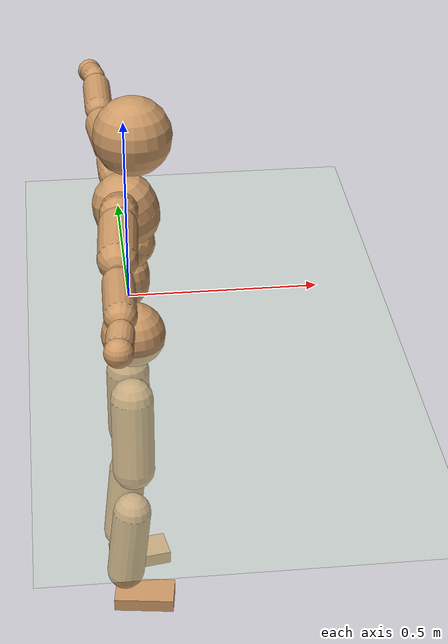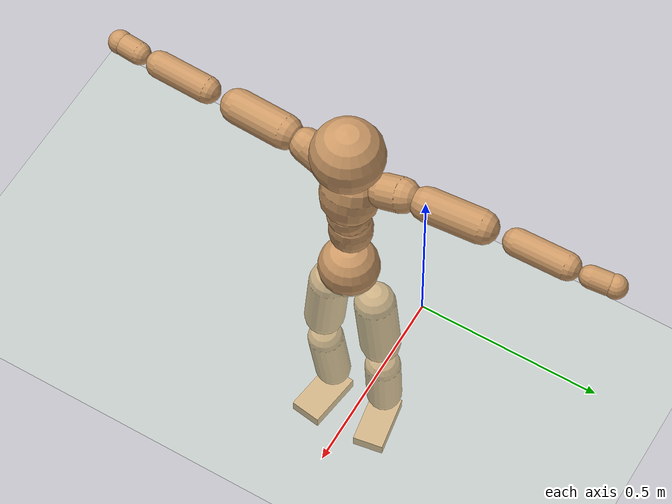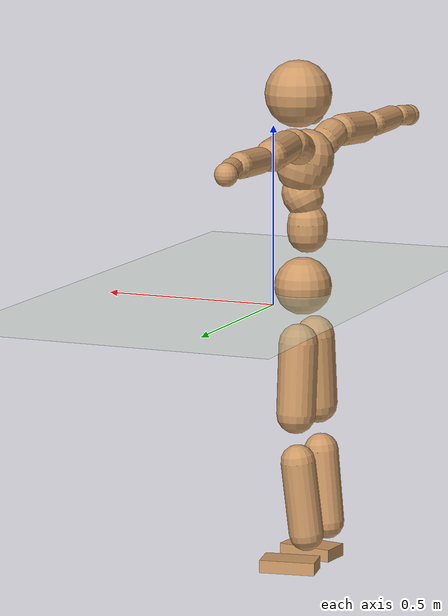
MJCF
<mujoco model="humanoid">
  <compiler coordinate="local"/>
  <default>
    <joint damping="0.0" armature="0.01" stiffness="0.0" limited="true"/>
    <geom conaffinity="1" condim="3" contype="7" margin="0.001" rgba="0.8 0.6 .4 1"/>
  </default>
  <asset>
    <texture type="skybox" builtin="gradient" rgb1=".4 .5 .6" rgb2="0 0 0" width="100" height="100"/>
    <texture builtin="flat" height="1278" mark="cross" markrgb="1 1 1" name="texgeom" random="0.01" rgb1="0.8 0.6 0.4" rgb2="0.8 0.6 0.4" type="cube" width="127"/>
    <texture builtin="checker" height="100" name="texplane" rgb1="0 0 0" rgb2="0.8 0.8 0.8" type="2d" width="100"/>
    <material name="MatPlane" reflectance="0.5" shininess="1" specular="1" texrepeat="60 60" texture="texplane"/>
    <material name="geom" texture="texgeom" texuniform="true"/>
  </asset>
  <worldbody>
    <light cutoff="100" diffuse="1 1 1" dir="-0 0 -1.3" directional="true" exponent="1" pos="0 0 1.3" specular=".1 .1 .1"/>
    <geom conaffinity="1" condim="3" name="floor" pos="0 0 0" rgba="0.8 0.9 0.8 1" size="100 100 .2" type="plane" material="MatPlane"/>
    <body name="Pelvis" pos="-0.0019 -0.2182 0.0178">
      <freejoint name="Pelvis"/>
      <geom type="sphere" contype="1" conaffinity="1" density="500" size="0.0823" pos="0.0000 0.0000 0.0000" name="Pelvis"/>
      <body name="L_Hip" pos="-0.0142 0.0634 -0.0857">
        <joint name="L_Hip_x" type="hinge" pos="0 0 0" axis="1 0 0" stiffness="800" damping="80" armature="0.02" range="-180.0000 180.0000"/>
        <joint name="L_Hip_y" type="hinge" pos="0 0 0" axis="0 1 0" stiffness="800" damping="80" armature="0.02" range="-180.0000 180.0000"/>
        <joint name="L_Hip_z" type="hinge" pos="0 0 0" axis="0 0 1" stiffness="800" damping="80" armature="0.02" range="-180.0000 180.0000"/>
        <geom type="capsule" contype="1" conaffinity="1" density="500" fromto="-0.0001 0.0059 -0.0673 -0.0003 0.0237 -0.2693" size="0.056" name="L_Hip"/>
        <body name="L_Knee" pos="-0.0004 0.0297 -0.3366">
          <joint name="L_Knee_x" type="hinge" pos="0 0 0" axis="1 0 0" stiffness="800" damping="80" armature="0.02" range="-180.0000 180.0000"/>
          <joint name="L_Knee_y" type="hinge" pos="0 0 0" axis="0 1 0" stiffness="800" damping="80" armature="0.02" range="-180.0000 180.0000"/>
          <joint name="L_Knee_z" type="hinge" pos="0 0 0" axis="0 0 1" stiffness="800" damping="80" armature="0.02" range="-180.0000 180.0000"/>
          <geom type="capsule" contype="1" conaffinity="1" density="500" fromto="-0.0077 -0.0025 -0.0699 -0.0308 -0.0098 -0.2796" size="0.0499" name="L_Knee"/>
          <body name="L_Ankle" pos="-0.0385 -0.0123 -0.3495">
            <joint name="L_Ankle_x" type="hinge" pos="0 0 0" axis="1 0 0" stiffness="800" damping="80" armature="0.02" range="-180.0000 180.0000"/>
            <joint name="L_Ankle_y" type="hinge" pos="0 0 0" axis="0 1 0" stiffness="800" damping="80" armature="0.02" range="-180.0000 180.0000"/>
            <joint name="L_Ankle_z" type="hinge" pos="0 0 0" axis="0 0 1" stiffness="800" damping="80" armature="0.02" range="-180.0000 180.0000"/>
            <geom type="box" contype="1" conaffinity="1" density="500" pos="0.0555 0.0092 -0.0249" size="0.0798 0.0432 0.0185" quat="0.9966 0.0000 0.0000 0.0819" name="L_Ankle"/>
            <body name="L_Toe" pos="0.111 0.0184 -0.0498">
              <joint name="L_Toe_x" type="hinge" pos="0 0 0" axis="1 0 0" stiffness="500" damping="50" armature="0.02" range="-180.0000 180.0000"/>
              <joint name="L_Toe_y" type="hinge" pos="0 0 0" axis="0 1 0" stiffness="500" damping="50" armature="0.02" range="-180.0000 180.0000"/>
              <joint name="L_Toe_z" type="hinge" pos="0 0 0" axis="0 0 1" stiffness="500" damping="50" armature="0.02" range="-180.0000 180.0000"/>
              <geom type="box" contype="1" conaffinity="1" density="500" pos="0.0000 0.0000 0.0247" size="0.0009 0.0022 0.0009" quat="0.9960 0.0000 0.0000 0.0890" name="L_Toe"/>
            </body>
          </body>
        </body>
      </body>
      <body name="R_Hip" pos="-0.0112 -0.0608 -0.0844">
        <joint name="R_Hip_x" type="hinge" pos="0 0 0" axis="1 0 0" stiffness="800" damping="80" armature="0.02" range="-180.0000 180.0000"/>
        <joint name="R_Hip_y" type="hinge" pos="0 0 0" axis="0 1 0" stiffness="800" damping="80" armature="0.02" range="-180.0000 180.0000"/>
        <joint name="R_Hip_z" type="hinge" pos="0 0 0" axis="0 0 1" stiffness="800" damping="80" armature="0.02" range="-180.0000 180.0000"/>
        <geom type="capsule" contype="1" conaffinity="1" density="500" fromto="-0.0007 -0.0067 -0.0688 -0.0030 -0.0266 -0.2750" size="0.0554" name="R_Hip"/>
        <body name="R_Knee" pos="-0.0037 -0.0333 -0.3438">
          <joint name="R_Knee_x" type="hinge" pos="0 0 0" axis="1 0 0" stiffness="800" damping="80" armature="0.02" range="-180.0000 180.0000"/>
          <joint name="R_Knee_y" type="hinge" pos="0 0 0" axis="0 1 0" stiffness="800" damping="80" armature="0.02" range="-180.0000 180.0000"/>
          <joint name="R_Knee_z" type="hinge" pos="0 0 0" axis="0 0 1" stiffness="800" damping="80" armature="0.02" range="-180.0000 180.0000"/>
          <geom type="capsule" contype="1" conaffinity="1" density="500" fromto="-0.0074 0.0029 -0.0697 -0.0296 0.0115 -0.2787" size="0.0503" name="R_Knee"/>
          <body name="R_Ankle" pos="-0.037 0.0144 -0.3484">
            <joint name="R_Ankle_x" type="hinge" pos="0 0 0" axis="1 0 0" stiffness="800" damping="80" armature="0.02" range="-180.0000 180.0000"/>
            <joint name="R_Ankle_y" type="hinge" pos="0 0 0" axis="0 1 0" stiffness="800" damping="80" armature="0.02" range="-180.0000 180.0000"/>
            <joint name="R_Ankle_z" type="hinge" pos="0 0 0" axis="0 0 1" stiffness="800" damping="80" armature="0.02" range="-180.0000 180.0000"/>
            <geom type="box" contype="1" conaffinity="1" density="500" pos="0.0570 -0.0081 -0.0209" size="0.0805 0.0446 0.0181" quat="0.9975 0.0000 0.0000 -0.0709" name="R_Ankle"/>
            <body name="R_Toe" pos="0.114 -0.0163 -0.0418">
              <joint name="R_Toe_x" type="hinge" pos="0 0 0" axis="1 0 0" stiffness="500" damping="50" armature="0.02" range="-180.0000 180.0000"/>
              <joint name="R_Toe_y" type="hinge" pos="0 0 0" axis="0 1 0" stiffness="500" damping="50" armature="0.02" range="-180.0000 180.0000"/>
              <joint name="R_Toe_z" type="hinge" pos="0 0 0" axis="0 0 1" stiffness="500" damping="50" armature="0.02" range="-180.0000 180.0000"/>
              <geom type="box" contype="1" conaffinity="1" density="500" pos="0.0000 0.0000 0.0232" size="0.0008 0.0022 0.001" quat="0.9981 0.0000 0.0000 -0.0612" name="R_Toe"/>
            </body>
          </body>
        </body>
      </body>
      <body name="Torso" pos="-0.0134 -0.0028 0.0988">
        <joint name="Torso_x" type="hinge" pos="0 0 0" axis="1 0 0" stiffness="1000" damping="100" armature="0.02" range="-180.0000 180.0000"/>
        <joint name="Torso_y" type="hinge" pos="0 0 0" axis="0 1 0" stiffness="1000" damping="100" armature="0.02" range="-180.0000 180.0000"/>
        <joint name="Torso_z" type="hinge" pos="0 0 0" axis="0 0 1" stiffness="1000" damping="100" armature="0.02" range="-180.0000 180.0000"/>
        <geom type="capsule" contype="1" conaffinity="1" density="500" fromto="0.0009 0.0026 0.0826 0.0006 0.0017 0.0551" size="0.05766" name="Torso"/>
        <body name="Spine" pos="0.0015 0.0044 0.1377">
          <joint name="Spine_x" type="hinge" pos="0 0 0" axis="1 0 0" stiffness="1000" damping="100" armature="0.02" range="-180.0000 180.0000"/>
          <joint name="Spine_y" type="hinge" pos="0 0 0" axis="0 1 0" stiffness="1000" damping="100" armature="0.02" range="-180.0000 180.0000"/>
          <joint name="Spine_z" type="hinge" pos="0 0 0" axis="0 0 1" stiffness="1000" damping="100" armature="0.02" range="-180.0000 180.0000"/>
          <geom type="capsule" contype="1" conaffinity="1" density="500" fromto="0.0151 0.0015 0.0296 0.0100 0.0010 0.0197" size="0.058311" name="Spine"/>
          <body name="Chest" pos="0.0251 0.0025 0.0493">
            <joint name="Chest_x" type="hinge" pos="0 0 0" axis="1 0 0" stiffness="1000" damping="100" armature="0.02" range="-180.0000 180.0000"/>
            <joint name="Chest_y" type="hinge" pos="0 0 0" axis="0 1 0" stiffness="1000" damping="100" armature="0.02" range="-180.0000 180.0000"/>
            <joint name="Chest_z" type="hinge" pos="0 0 0" axis="0 0 1" stiffness="1000" damping="100" armature="0.02" range="-180.0000 180.0000"/>
            <geom type="capsule" contype="1" conaffinity="1" density="500" fromto="-0.0244 -0.0008 0.0845 -0.0163 -0.0005 0.0564" size="0.078864" name="Chest"/>
            <body name="Neck" pos="-0.0484 -0.002 0.2002">
              <joint name="Neck_x" type="hinge" pos="0 0 0" axis="1 0 0" stiffness="500" damping="50" armature="0.02" range="-180.0000 180.0000"/>
              <joint name="Neck_y" type="hinge" pos="0 0 0" axis="0 1 0" stiffness="500" damping="50" armature="0.02" range="-180.0000 180.0000"/>
              <joint name="Neck_z" type="hinge" pos="0 0 0" axis="0 0 1" stiffness="500" damping="50" armature="0.02" range="-180.0000 180.0000"/>
              <geom type="capsule" contype="1" conaffinity="1" density="500" fromto="0.0096 0.0010 0.0124 0.0385 0.0041 0.0498" size="0.036084" name="Neck"/>
              <body name="Head" pos="0.0481 0.0052 0.0622">
                <joint name="Head_x" type="hinge" pos="0 0 0" axis="1 0 0" stiffness="500" damping="50" armature="0.02" range="-180.0000 180.0000"/>
                <joint name="Head_y" type="hinge" pos="0 0 0" axis="0 1 0" stiffness="500" damping="50" armature="0.02" range="-180.0000 180.0000"/>
                <joint name="Head_z" type="hinge" pos="0 0 0" axis="0 0 1" stiffness="500" damping="50" armature="0.02" range="-180.0000 180.0000"/>
                <geom type="sphere" contype="1" conaffinity="1" density="500" size="0.0952" pos="0.0000 0.0000 0.0000" name="Head"/>
              </body>
            </body>
            <body name="L_Thorax" pos="-0.0345 0.0692 0.1126">
              <joint name="L_Thorax_x" type="hinge" pos="0 0 0" axis="1 0 0" stiffness="500" damping="50" armature="0.02" range="-180.0000 180.0000"/>
              <joint name="L_Thorax_y" type="hinge" pos="0 0 0" axis="0 1 0" stiffness="500" damping="50" armature="0.02" range="-180.0000 180.0000"/>
              <joint name="L_Thorax_z" type="hinge" pos="0 0 0" axis="0 0 1" stiffness="500" damping="50" armature="0.02" range="-180.0000 180.0000"/>
              <geom type="capsule" contype="1" conaffinity="1" density="500" fromto="-0.0008 0.0167 0.0058 -0.0031 0.0667 0.0234" size="0.0458" name="L_Thorax"/>
              <body name="L_Shoulder" pos="-0.0039 0.0834 0.0292">
                <joint name="L_Shoulder_x" type="hinge" pos="0 0 0" axis="1 0 0" stiffness="500" damping="50" armature="0.02" range="-720.0000 720.0000"/>
                <joint name="L_Shoulder_y" type="hinge" pos="0 0 0" axis="0 1 0" stiffness="500" damping="50" armature="0.02" range="-720.0000 720.0000"/>
                <joint name="L_Shoulder_z" type="hinge" pos="0 0 0" axis="0 0 1" stiffness="500" damping="50" armature="0.02" range="-720.0000 720.0000"/>
                <geom type="capsule" contype="1" conaffinity="1" density="500" fromto="-0.0049 0.0479 -0.0022 -0.0196 0.1917 -0.0089" size="0.0446" name="L_Shoulder"/>
                <body name="L_Elbow" pos="-0.0245 0.2396 -0.0111">
                  <joint name="L_Elbow_x" type="hinge" pos="0 0 0" axis="1 0 0" stiffness="500" damping="50" armature="0.02" range="-720.0000 720.0000"/>
                  <joint name="L_Elbow_y" type="hinge" pos="0 0 0" axis="0 1 0" stiffness="500" damping="50" armature="0.02" range="-720.0000 720.0000"/>
                  <joint name="L_Elbow_z" type="hinge" pos="0 0 0" axis="0 0 1" stiffness="500" damping="50" armature="0.02" range="-720.0000 720.0000"/>
                  <geom type="capsule" contype="1" conaffinity="1" density="500" fromto="-0.0001 0.0457 0.0013 -0.0004 0.1827 0.0052" size="0.0361" name="L_Elbow"/>
                  <body name="L_Wrist" pos="-0.0005 0.2284 0.0066">
                    <joint name="L_Wrist_x" type="hinge" pos="0 0 0" axis="1 0 0" stiffness="300" damping="30" armature="0.02" range="-180.0000 180.0000"/>
                    <joint name="L_Wrist_y" type="hinge" pos="0 0 0" axis="0 1 0" stiffness="300" damping="30" armature="0.02" range="-180.0000 180.0000"/>
                    <joint name="L_Wrist_z" type="hinge" pos="0 0 0" axis="0 0 1" stiffness="300" damping="30" armature="0.02" range="-180.0000 180.0000"/>
                    <geom type="capsule" contype="1" conaffinity="1" density="500" fromto="-0.0026 0.0156 -0.0019 -0.0103 0.0625 -0.0076" size="0.0293" name="L_Wrist"/>
                    <body name="L_Hand" pos="-0.0129 0.0781 -0.0095">
                      <joint name="L_Hand_x" type="hinge" pos="0 0 0" axis="1 0 0" stiffness="300" damping="30" armature="0.02" range="-180.0000 180.0000"/>
                      <joint name="L_Hand_y" type="hinge" pos="0 0 0" axis="0 1 0" stiffness="300" damping="30" armature="0.02" range="-180.0000 180.0000"/>
                      <joint name="L_Hand_z" type="hinge" pos="0 0 0" axis="0 0 1" stiffness="300" damping="30" armature="0.02" range="-180.0000 180.0000"/>
                      <geom type="sphere" contype="1" conaffinity="1" density="500" size="0.0315" pos="0.0000 0.0000 0.0000" name="L_Hand"/>
                    </body>
                  </body>
                </body>
              </body>
            </body>
            <body name="R_Thorax" pos="-0.0392 -0.071 0.1099">
              <joint name="R_Thorax_x" type="hinge" pos="0 0 0" axis="1 0 0" stiffness="500" damping="50" armature="0.02" range="-180.0000 180.0000"/>
              <joint name="R_Thorax_y" type="hinge" pos="0 0 0" axis="0 1 0" stiffness="500" damping="50" armature="0.02" range="-180.0000 180.0000"/>
              <joint name="R_Thorax_z" type="hinge" pos="0 0 0" axis="0 0 1" stiffness="500" damping="50" armature="0.02" range="-180.0000 180.0000"/>
              <geom type="capsule" contype="1" conaffinity="1" density="500" fromto="-0.0016 -0.0176 0.0060 -0.0064 -0.0705 0.0241" size="0.0448" name="R_Thorax"/>
              <body name="R_Shoulder" pos="-0.0079 -0.0881 0.0301">
                <joint name="R_Shoulder_x" type="hinge" pos="0 0 0" axis="1 0 0" stiffness="500" damping="50" armature="0.02" range="-720.0000 720.0000"/>
                <joint name="R_Shoulder_y" type="hinge" pos="0 0 0" axis="0 1 0" stiffness="500" damping="50" armature="0.02" range="-720.0000 720.0000"/>
                <joint name="R_Shoulder_z" type="hinge" pos="0 0 0" axis="0 0 1" stiffness="500" damping="50" armature="0.02" range="-720.0000 720.0000"/>
                <geom type="capsule" contype="1" conaffinity="1" density="500" fromto="-0.0031 -0.0470 -0.0023 -0.0123 -0.1881 -0.0093" size="0.046" name="R_Shoulder"/>
                <body name="R_Elbow" pos="-0.0153 -0.2351 -0.0117">
                  <joint name="R_Elbow_x" type="hinge" pos="0 0 0" axis="1 0 0" stiffness="500" damping="50" armature="0.02" range="-720.0000 720.0000"/>
                  <joint name="R_Elbow_y" type="hinge" pos="0 0 0" axis="0 1 0" stiffness="500" damping="50" armature="0.02" range="-720.0000 720.0000"/>
                  <joint name="R_Elbow_z" type="hinge" pos="0 0 0" axis="0 0 1" stiffness="500" damping="50" armature="0.02" range="-720.0000 720.0000"/>
                  <geom type="capsule" contype="1" conaffinity="1" density="500" fromto="-0.0010 -0.0470 0.0010 -0.0040 -0.1878 0.0040" size="0.0359" name="R_Elbow"/>
                  <body name="R_Wrist" pos="-0.0051 -0.2348 0.005">
                    <joint name="R_Wrist_x" type="hinge" pos="0 0 0" axis="1 0 0" stiffness="300" damping="30" armature="0.02" range="-180.0000 180.0000"/>
                    <joint name="R_Wrist_y" type="hinge" pos="0 0 0" axis="0 1 0" stiffness="300" damping="30" armature="0.02" range="-180.0000 180.0000"/>
                    <joint name="R_Wrist_z" type="hinge" pos="0 0 0" axis="0 0 1" stiffness="300" damping="30" armature="0.02" range="-180.0000 180.0000"/>
                    <geom type="capsule" contype="1" conaffinity="1" density="500" fromto="-0.0020 -0.0158 -0.0014 -0.0081 -0.0631 -0.0057" size="0.03" name="R_Wrist"/>
                    <body name="R_Hand" pos="-0.0101 -0.0788 -0.0071">
                      <joint name="R_Hand_x" type="hinge" pos="0 0 0" axis="1 0 0" stiffness="300" damping="30" armature="0.02" range="-180.0000 180.0000"/>
                      <joint name="R_Hand_y" type="hinge" pos="0 0 0" axis="0 1 0" stiffness="300" damping="30" armature="0.02" range="-180.0000 180.0000"/>
                      <joint name="R_Hand_z" type="hinge" pos="0 0 0" axis="0 0 1" stiffness="300" damping="30" armature="0.02" range="-180.0000 180.0000"/>
                      <geom type="sphere" contype="1" conaffinity="1" density="500" size="0.0316" pos="0.0000 0.0000 0.0000" name="R_Hand"/>
                    </body>
                  </body>
                </body>
              </body>
            </body>
          </body>
        </body>
      </body>
    </body>
  </worldbody>
  <actuator>
    <motor name="L_Hip_x" joint="L_Hip_x" gear="500"/>
    <motor name="L_Hip_y" joint="L_Hip_y" gear="500"/>
    <motor name="L_Hip_z" joint="L_Hip_z" gear="500"/>
    <motor name="L_Knee_x" joint="L_Knee_x" gear="500"/>
    <motor name="L_Knee_y" joint="L_Knee_y" gear="500"/>
    <motor name="L_Knee_z" joint="L_Knee_z" gear="500"/>
    <motor name="L_Ankle_x" joint="L_Ankle_x" gear="500"/>
    <motor name="L_Ankle_y" joint="L_Ankle_y" gear="500"/>
    <motor name="L_Ankle_z" joint="L_Ankle_z" gear="500"/>
    <motor name="L_Toe_x" joint="L_Toe_x" gear="500"/>
    <motor name="L_Toe_y" joint="L_Toe_y" gear="500"/>
    <motor name="L_Toe_z" joint="L_Toe_z" gear="500"/>
    <motor name="R_Hip_x" joint="R_Hip_x" gear="500"/>
    <motor name="R_Hip_y" joint="R_Hip_y" gear="500"/>
    <motor name="R_Hip_z" joint="R_Hip_z" gear="500"/>
    <motor name="R_Knee_x" joint="R_Knee_x" gear="500"/>
    <motor name="R_Knee_y" joint="R_Knee_y" gear="500"/>
    <motor name="R_Knee_z" joint="R_Knee_z" gear="500"/>
    <motor name="R_Ankle_x" joint="R_Ankle_x" gear="500"/>
    <motor name="R_Ankle_y" joint="R_Ankle_y" gear="500"/>
    <motor name="R_Ankle_z" joint="R_Ankle_z" gear="500"/>
    <motor name="R_Toe_x" joint="R_Toe_x" gear="500"/>
    <motor name="R_Toe_y" joint="R_Toe_y" gear="500"/>
    <motor name="R_Toe_z" joint="R_Toe_z" gear="500"/>
    <motor name="Torso_x" joint="Torso_x" gear="500"/>
    <motor name="Torso_y" joint="Torso_y" gear="500"/>
    <motor name="Torso_z" joint="Torso_z" gear="500"/>
    <motor name="Spine_x" joint="Spine_x" gear="500"/>
    <motor name="Spine_y" joint="Spine_y" gear="500"/>
    <motor name="Spine_z" joint="Spine_z" gear="500"/>
    <motor name="Chest_x" joint="Chest_x" gear="500"/>
    <motor name="Chest_y" joint="Chest_y" gear="500"/>
    <motor name="Chest_z" joint="Chest_z" gear="500"/>
    <motor name="Neck_x" joint="Neck_x" gear="500"/>
    <motor name="Neck_y" joint="Neck_y" gear="500"/>
    <motor name="Neck_z" joint="Neck_z" gear="500"/>
    <motor name="Head_x" joint="Head_x" gear="500"/>
    <motor name="Head_y" joint="Head_y" gear="500"/>
    <motor name="Head_z" joint="Head_z" gear="500"/>
    <motor name="L_Thorax_x" joint="L_Thorax_x" gear="500"/>
    <motor name="L_Thorax_y" joint="L_Thorax_y" gear="500"/>
    <motor name="L_Thorax_z" joint="L_Thorax_z" gear="500"/>
    <motor name="L_Shoulder_x" joint="L_Shoulder_x" gear="500"/>
    <motor name="L_Shoulder_y" joint="L_Shoulder_y" gear="500"/>
    <motor name="L_Shoulder_z" joint="L_Shoulder_z" gear="500"/>
    <motor name="L_Elbow_x" joint="L_Elbow_x" gear="500"/>
    <motor name="L_Elbow_y" joint="L_Elbow_y" gear="500"/>
    <motor name="L_Elbow_z" joint="L_Elbow_z" gear="500"/>
    <motor name="L_Wrist_x" joint="L_Wrist_x" gear="500"/>
    <motor name="L_Wrist_y" joint="L_Wrist_y" gear="500"/>
    <motor name="L_Wrist_z" joint="L_Wrist_z" gear="500"/>
    <motor name="L_Hand_x" joint="L_Hand_x" gear="500"/>
    <motor name="L_Hand_y" joint="L_Hand_y" gear="500"/>
    <motor name="L_Hand_z" joint="L_Hand_z" gear="500"/>
    <motor name="R_Thorax_x" joint="R_Thorax_x" gear="500"/>
    <motor name="R_Thorax_y" joint="R_Thorax_y" gear="500"/>
    <motor name="R_Thorax_z" joint="R_Thorax_z" gear="500"/>
    <motor name="R_Shoulder_x" joint="R_Shoulder_x" gear="500"/>
    <motor name="R_Shoulder_y" joint="R_Shoulder_y" gear="500"/>
    <motor name="R_Shoulder_z" joint="R_Shoulder_z" gear="500"/>
    <motor name="R_Elbow_x" joint="R_Elbow_x" gear="500"/>
    <motor name="R_Elbow_y" joint="R_Elbow_y" gear="500"/>
    <motor name="R_Elbow_z" joint="R_Elbow_z" gear="500"/>
    <motor name="R_Wrist_x" joint="R_Wrist_x" gear="500"/>
    <motor name="R_Wrist_y" joint="R_Wrist_y" gear="500"/>
    <motor name="R_Wrist_z" joint="R_Wrist_z" gear="500"/>
    <motor name="R_Hand_x" joint="R_Hand_x" gear="500"/>
    <motor name="R_Hand_y" joint="R_Hand_y" gear="500"/>
    <motor name="R_Hand_z" joint="R_Hand_z" gear="500"/>
  </actuator>
  <contact>
    <exclude body1="Torso" body2="Chest"/>
    <exclude body1="Head" body2="Chest"/>
    <exclude body1="R_Knee" body2="R_Toe"/>
    <exclude body1="R_Knee" body2="L_Ankle"/>
    <exclude body1="R_Knee" body2="L_Toe"/>
    <exclude body1="L_Knee" body2="L_Toe"/>
    <exclude body1="L_Knee" body2="R_Ankle"/>
    <exclude body1="L_Knee" body2="R_Toe"/>
    <exclude body1="L_Shoulder" body2="Chest"/>
    <exclude body1="R_Shoulder" body2="Chest"/>
  </contact>
  <sensor/>
  <size njmax="700" nconmax="700"/>
</mujoco>
